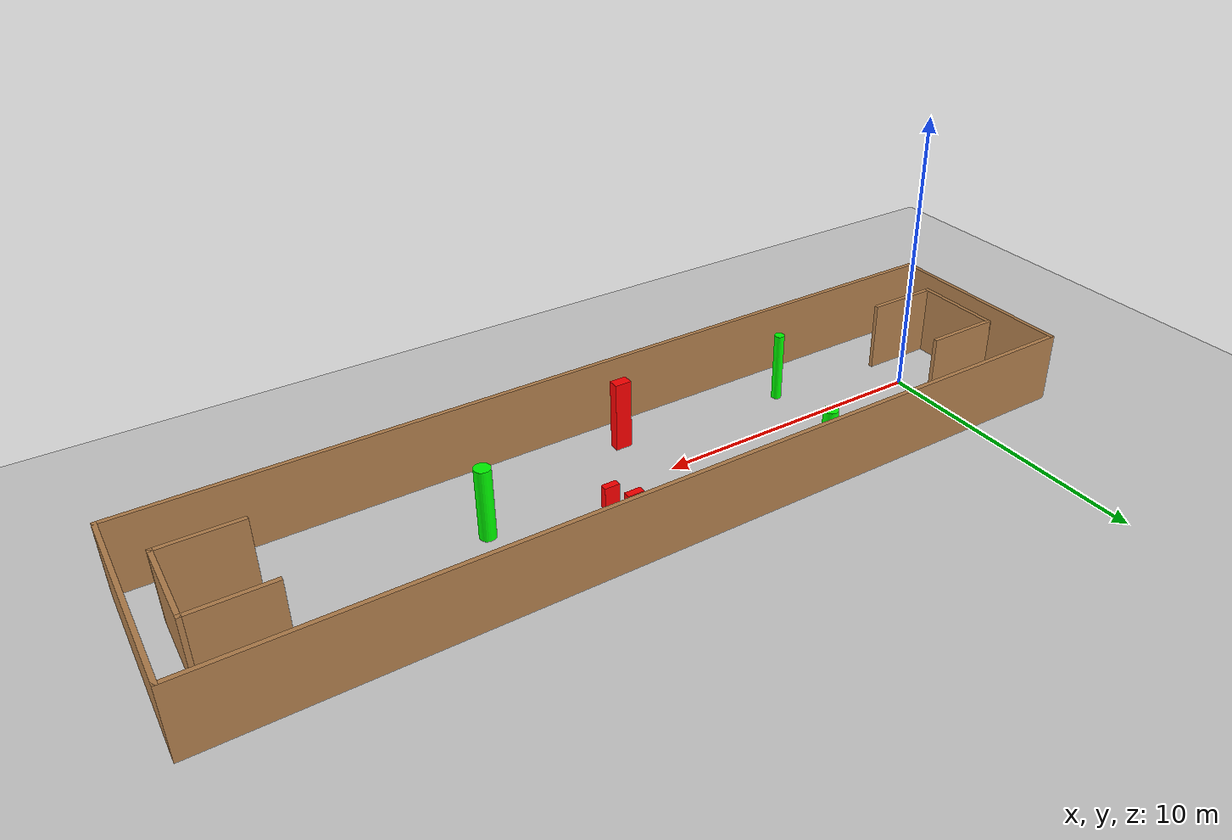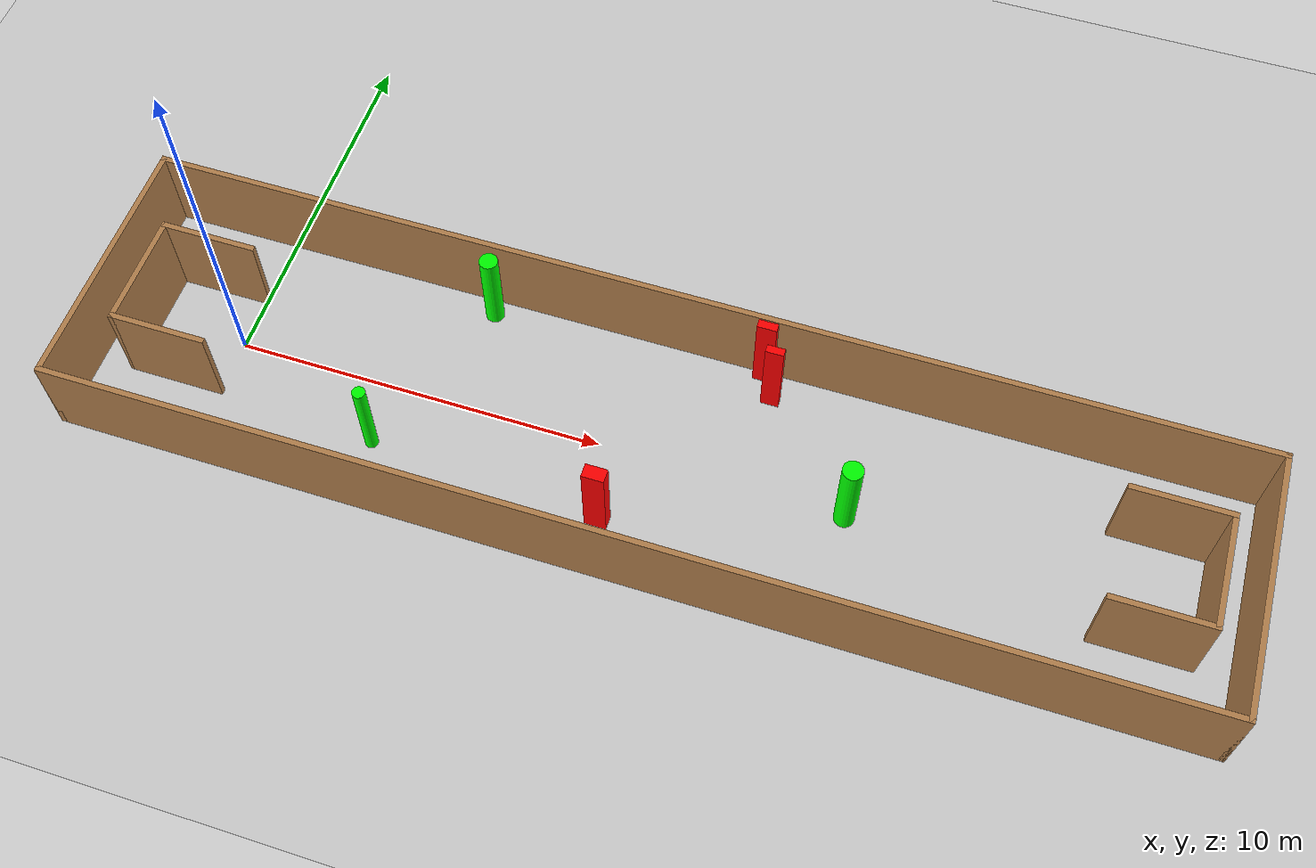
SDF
<sdf version="1.7">
 <world name="default">
  <light name="sun" type="directional">
   <pose>0 0 10 0 -0 0</pose>
   <diffuse>0.8 0.8 0.8 1</diffuse>
   <specular>0.2 0.2 0.2 1</specular>
   <attenuation>
    <range>1000</range>
    <constant>0.9</constant>
    <linear>0.01</linear>
    <quadratic>0.001</quadratic>
   </attenuation>
   <direction>-0.5 0.1 -0.9</direction>
   <spot><inner_angle>0</inner_angle><outer_angle>0</outer_angle><falloff>0</falloff></spot>
  </light>
  <model name="ground_plane">
   <static>1</static>
   <link name="link">
    <collision name="collision">
     <geometry><plane><normal>0 0 1</normal><size>100 100</size></plane></geometry>
     <surface>
      <contact><collide_bitmask>65535</collide_bitmask></contact>
      <friction><ode><mu>100</mu><mu2>50</mu2></ode></friction>
     </surface>
    </collision>
    <visual name="visual">
     <cast_shadows>0</cast_shadows>
     <geometry><plane><normal>0 0 1</normal><size>100 100</size></plane></geometry>
     <material>
      <script><uri>file://media/materials/scripts/gazebo.material</uri><name>Gazebo/Grey</name></script>
     </material>
    </visual>
   </link>
  </model>
  <gravity>0 0 -9.8</gravity>
  <magnetic_field>6e-06 2.3e-05 -4.2e-05</magnetic_field>
  <atmosphere type="adiabatic"/>
  <physics type="ode">
   <max_step_size>0.001</max_step_size>
   <real_time_factor>1</real_time_factor>
   <real_time_update_rate>1000</real_time_update_rate>
  </physics>
  <scene><ambient>0.4 0.4 0.4 1</ambient><background>0.7 0.7 0.7 1</background><shadows>1</shadows></scene>
  <spherical_coordinates>
   <surface_model>EARTH_WGS84</surface_model>
   <latitude_deg>0</latitude_deg>
   <longitude_deg>0</longitude_deg>
   <elevation>0</elevation>
   <heading_deg>0</heading_deg>
  </spherical_coordinates>
  <model name="my_base_walls">
   <link name="Wall_0">
    <collision name="Wall_0_Collision">
     <geometry><box><size>7.15 0.15 2.5</size></box></geometry>
     <pose>0 0 1.25 0 -0 0</pose>
    </collision>
    <visual name="Wall_0_Visual">
     <pose>0 0 1.25 0 -0 0</pose>
     <geometry><box><size>7.15 0.15 2.5</size></box></geometry>
     <material>
      <script><uri>file://media/materials/scripts/gazebo.material</uri><name>Gazebo/Wood</name></script>
      <ambient>1 1 1 1</ambient>
     </material>
     <meta><layer>0</layer></meta>
    </visual>
    <pose>-15 0 0 0 -0 1.5708</pose>
   </link>
   <link name="Wall_10">
    <collision name="Wall_10_Collision">
     <geometry><box><size>2.65 0.15 2.5</size></box></geometry>
     <pose>0 0 1.25 0 -0 0</pose>
    </collision>
    <visual name="Wall_10_Visual">
     <pose>0 0 1.25 0 -0 0</pose>
     <geometry><box><size>2.65 0.15 2.5</size></box></geometry>
     <material>
      <script><uri>file://media/materials/scripts/gazebo.material</uri><name>Gazebo/Wood</name></script>
      <ambient>1 1 1 1</ambient>
     </material>
     <meta><layer>0</layer></meta>
    </visual>
    <pose>-12.75 -1.5 0 0 -0 0</pose>
   </link>
   <link name="Wall_12">
    <collision name="Wall_12_Collision">
     <geometry><box><size>2.65 0.15 2.5</size></box></geometry>
     <pose>0 0 1.25 0 -0 0</pose>
    </collision>
    <visual name="Wall_12_Visual">
     <pose>0 0 1.25 0 -0 0</pose>
     <geometry><box><size>2.65 0.15 2.5</size></box></geometry>
     <material>
      <script><uri>file://media/materials/scripts/gazebo.material</uri><name>Gazebo/Wood</name></script>
      <ambient>1 1 1 1</ambient>
     </material>
     <meta><layer>0</layer></meta>
    </visual>
    <pose>-12.75 1.5 0 0 -0 0</pose>
   </link>
   <link name="Wall_14">
    <collision name="Wall_14_Collision">
     <geometry><box><size>3.15 0.15 2.5</size></box></geometry>
     <pose>0 0 1.25 0 -0 0</pose>
    </collision>
    <visual name="Wall_14_Visual">
     <pose>0 0 1.25 0 -0 0</pose>
     <geometry><box><size>3.15 0.15 2.5</size></box></geometry>
     <material>
      <script><uri>file://media/materials/scripts/gazebo.material</uri><name>Gazebo/Wood</name></script>
      <ambient>1 1 1 1</ambient>
     </material>
     <meta><layer>0</layer></meta>
    </visual>
    <pose>14 0 0 0 -0 -1.5708</pose>
   </link>
   <link name="Wall_15">
    <collision name="Wall_15_Collision">
     <geometry><box><size>2.65 0.15 2.5</size></box></geometry>
     <pose>0 0 1.25 0 -0 0</pose>
    </collision>
    <visual name="Wall_15_Visual">
     <pose>0 0 1.25 0 -0 0</pose>
     <geometry><box><size>2.65 0.15 2.5</size></box></geometry>
     <material>
      <script><uri>file://media/materials/scripts/gazebo.material</uri><name>Gazebo/Wood</name></script>
      <ambient>1 1 1 1</ambient>
     </material>
     <meta><layer>0</layer></meta>
    </visual>
    <pose>12.75 -1.5 0 0 -0 3.14159</pose>
   </link>
   <link name="Wall_17">
    <collision name="Wall_17_Collision">
     <geometry><box><size>2.65 0.15 2.5</size></box></geometry>
     <pose>0 0 1.25 0 -0 0</pose>
    </collision>
    <visual name="Wall_17_Visual">
     <pose>0 0 1.25 0 -0 0</pose>
     <geometry><box><size>2.65 0.15 2.5</size></box></geometry>
     <material>
      <script><uri>file://media/materials/scripts/gazebo.material</uri><name>Gazebo/Wood</name></script>
      <ambient>1 1 1 1</ambient>
     </material>
     <meta><layer>0</layer></meta>
    </visual>
    <pose>12.75 1.5 0 0 -0 3.14159</pose>
   </link>
   <link name="Wall_2">
    <collision name="Wall_2_Collision">
     <geometry><box><size>30.15 0.15 2.5</size></box></geometry>
     <pose>0 0 1.25 0 -0 0</pose>
    </collision>
    <visual name="Wall_2_Visual">
     <pose>0 0 1.25 0 -0 0</pose>
     <geometry><box><size>30.15 0.15 2.5</size></box></geometry>
     <material>
      <script><uri>file://media/materials/scripts/gazebo.material</uri><name>Gazebo/Wood</name></script>
      <ambient>1 1 1 1</ambient>
     </material>
     <meta><layer>0</layer></meta>
    </visual>
    <pose>-0 -3.5 0 0 -0 0</pose>
   </link>
   <link name="Wall_4">
    <collision name="Wall_4_Collision">
     <geometry><box><size>30.15 0.15 2.5</size></box></geometry>
     <pose>0 0 1.25 0 -0 0</pose>
    </collision>
    <visual name="Wall_4_Visual">
     <pose>0 0 1.25 0 -0 0</pose>
     <geometry><box><size>30.15 0.15 2.5</size></box></geometry>
     <material>
      <script><uri>file://media/materials/scripts/gazebo.material</uri><name>Gazebo/Wood</name></script>
      <ambient>1 1 1 1</ambient>
     </material>
     <meta><layer>0</layer></meta>
    </visual>
    <pose>-0 3.5 0 0 -0 0</pose>
   </link>
   <link name="Wall_6">
    <collision name="Wall_6_Collision">
     <geometry><box><size>7.15 0.15 2.5</size></box></geometry>
     <pose>0 0 1.25 0 -0 0</pose>
    </collision>
    <visual name="Wall_6_Visual">
     <pose>0 0 1.25 0 -0 0</pose>
     <geometry><box><size>7.15 0.15 2.5</size></box></geometry>
     <material>
      <script><uri>file://media/materials/scripts/gazebo.material</uri><name>Gazebo/Wood</name></script>
      <ambient>1 1 1 1</ambient>
     </material>
     <meta><layer>0</layer></meta>
    </visual>
    <pose>15 0 0 0 -0 -1.5708</pose>
   </link>
   <link name="Wall_9">
    <collision name="Wall_9_Collision">
     <geometry><box><size>3.15 0.15 2.5</size></box></geometry>
     <pose>0 0 1.25 0 -0 0</pose>
    </collision>
    <visual name="Wall_9_Visual">
     <pose>0 0 1.25 0 -0 0</pose>
     <geometry><box><size>3.15 0.15 2.5</size></box></geometry>
     <material>
      <script><uri>file://media/materials/scripts/gazebo.material</uri><name>Gazebo/Wood</name></script>
      <ambient>1 1 1 1</ambient>
     </material>
     <meta><layer>0</layer></meta>
    </visual>
    <pose>-14 0 0 0 -0 -1.5708</pose>
   </link>
   <static>1</static>
   <pose>11.5 0 0 0 -0 0</pose>
  </model>
  <model name="cylinder1">
   <static>1</static>
   <link name="link">
    <inertial>
     <mass>1</mass>
     <inertia><ixx>0.5</ixx><ixy>0</ixy><ixz>0</ixz><iyy>0.5</iyy><iyz>0</iyz><izz>1</izz></inertia>
    </inertial>
    <collision name="collision">
     <geometry><cylinder><radius>0.17249231921525163</radius><length>2.5</length></cylinder></geometry>
    </collision>
    <visual name="visual">
     <geometry><cylinder><radius>0.17249231921525163</radius><length>2.5</length></cylinder></geometry>
     <material>
      <ambient>0 1 0 1</ambient>
      <diffuse>0 1 0 1</diffuse>
      <specular>0.1 0.1 0.1 1</specular>
      <emissive>0 0 0 0</emissive>
     </material>
    </visual>
   </link>
   <pose>4.384591326221326 -1.7133161938660897 1.25 0 0 0</pose>
  </model>
  <model name="cylinder2">
   <static>1</static>
   <link name="link">
    <inertial>
     <mass>1</mass>
     <inertia><ixx>0.5</ixx><ixy>0</ixy><ixz>0</ixz><iyy>0.5</iyy><iyz>0</iyz><izz>1</izz></inertia>
    </inertial>
    <collision name="collision">
     <geometry><cylinder><radius>0.27213378229556107</radius><length>2.5</length></cylinder></geometry>
    </collision>
    <visual name="visual">
     <geometry><cylinder><radius>0.27213378229556107</radius><length>2.5</length></cylinder></geometry>
     <material>
      <ambient>0 1 0 1</ambient>
      <diffuse>0 1 0 1</diffuse>
      <specular>0.1 0.1 0.1 1</specular>
      <emissive>0 0 0 0</emissive>
     </material>
    </visual>
   </link>
   <pose>16.569807189415286 -0.11520113152568534 1.25 0 0 0</pose>
  </model>
  <model name="cylinder3">
   <static>1</static>
   <link name="link">
    <inertial>
     <mass>1</mass>
     <inertia><ixx>0.5</ixx><ixy>0</ixy><ixz>0</ixz><iyy>0.5</iyy><iyz>0</iyz><izz>1</izz></inertia>
    </inertial>
    <collision name="collision">
     <geometry><cylinder><radius>0.24946133080922817</radius><length>2.5</length></cylinder></geometry>
    </collision>
    <visual name="visual">
     <geometry><cylinder><radius>0.24946133080922817</radius><length>2.5</length></cylinder></geometry>
     <material>
      <ambient>0 1 0 1</ambient>
      <diffuse>0 1 0 1</diffuse>
      <specular>0.1 0.1 0.1 1</specular>
      <emissive>0 0 0 0</emissive>
     </material>
    </visual>
   </link>
   <pose>6.038299515353813 2.986098390306756 1.25 0 0 0</pose>
  </model>
  <model name="box1">
   <static>1</static>
   <link name="link">
    <inertial>
     <mass>1</mass>
     <inertia><ixx>0.083</ixx><ixy>0</ixy><ixz>0</ixz><iyy>0.083</iyy><iyz>0</iyz><izz>0.083</izz></inertia>
    </inertial>
    <collision name="collision">
     <geometry><box><size>0.5830000841954017 0.3577832497737296 2.5</size></box></geometry>
    </collision>
    <visual name="visual">
     <geometry><box><size>0.5830000841954017 0.3577832497737296 2.5</size></box></geometry>
     <material>
      <ambient>1 0 0 1</ambient>
      <diffuse>1 0 0 1</diffuse>
      <specular>0.1 0.1 0.1 1</specular>
      <emissive>0 0 0 0</emissive>
     </material>
    </visual>
    <sensor name="my_contact" type="contact">
     <contact><collision>box_collision</collision><topic>__default_topic__</topic></contact>
    </sensor>
   </link>
   <pose>10.667411439112161 -2.0737070251352767 1.25 0 0 0</pose>
  </model>
  <model name="box2">
   <static>1</static>
   <link name="link">
    <inertial>
     <mass>1</mass>
     <inertia><ixx>0.083</ixx><ixy>0</ixy><ixz>0</ixz><iyy>0.083</iyy><iyz>0</iyz><izz>0.083</izz></inertia>
    </inertial>
    <collision name="collision">
     <geometry><box><size>0.5279827993911803 0.2250324857519457 2.5</size></box></geometry>
    </collision>
    <visual name="visual">
     <geometry><box><size>0.5279827993911803 0.2250324857519457 2.5</size></box></geometry>
     <material>
      <ambient>1 0 0 1</ambient>
      <diffuse>1 0 0 1</diffuse>
      <specular>0.1 0.1 0.1 1</specular>
      <emissive>0 0 0 0</emissive>
     </material>
    </visual>
    <sensor name="my_contact" type="contact">
     <contact><collision>box_collision</collision><topic>__default_topic__</topic></contact>
    </sensor>
   </link>
   <pose>13.488984913792159 3.2763957343128034 1.25 0 0 0</pose>
  </model>
  <model name="box3">
   <static>1</static>
   <link name="link">
    <inertial>
     <mass>1</mass>
     <inertia><ixx>0.083</ixx><ixy>0</ixy><ixz>0</ixz><iyy>0.083</iyy><iyz>0</iyz><izz>0.083</izz></inertia>
    </inertial>
    <collision name="collision">
     <geometry><box><size>0.48757427000322556 0.21469506730449991 2.5</size></box></geometry>
    </collision>
    <visual name="visual">
     <geometry><box><size>0.48757427000322556 0.21469506730449991 2.5</size></box></geometry>
     <material>
      <ambient>1 0 0 1</ambient>
      <diffuse>1 0 0 1</diffuse>
      <specular>0.1 0.1 0.1 1</specular>
      <emissive>0 0 0 0</emissive>
     </material>
    </visual>
    <sensor name="my_contact" type="contact">
     <contact><collision>box_collision</collision><topic>__default_topic__</topic></contact>
    </sensor>
   </link>
   <pose>13.871362164115146 2.615024705980539 1.25 0 0 0</pose>
  </model>
 </world>
</sdf>
